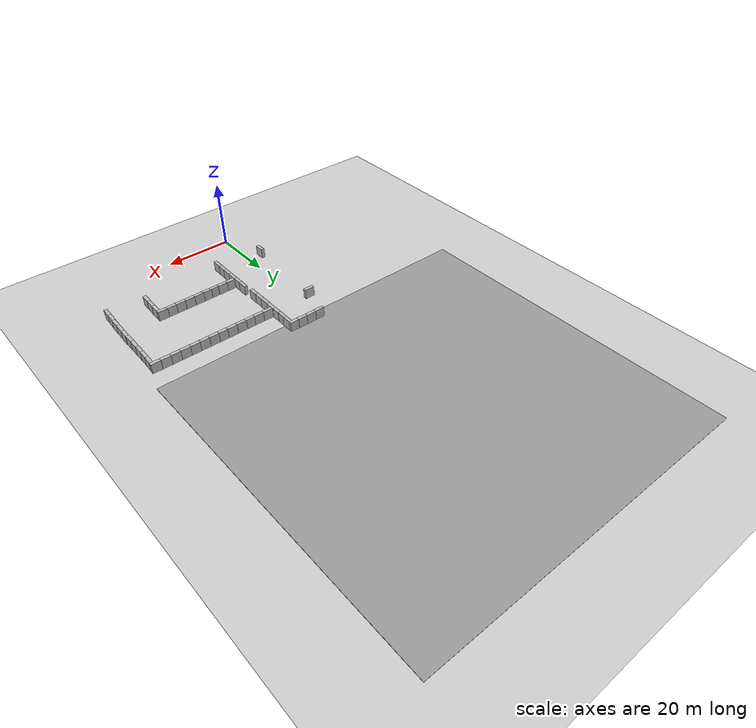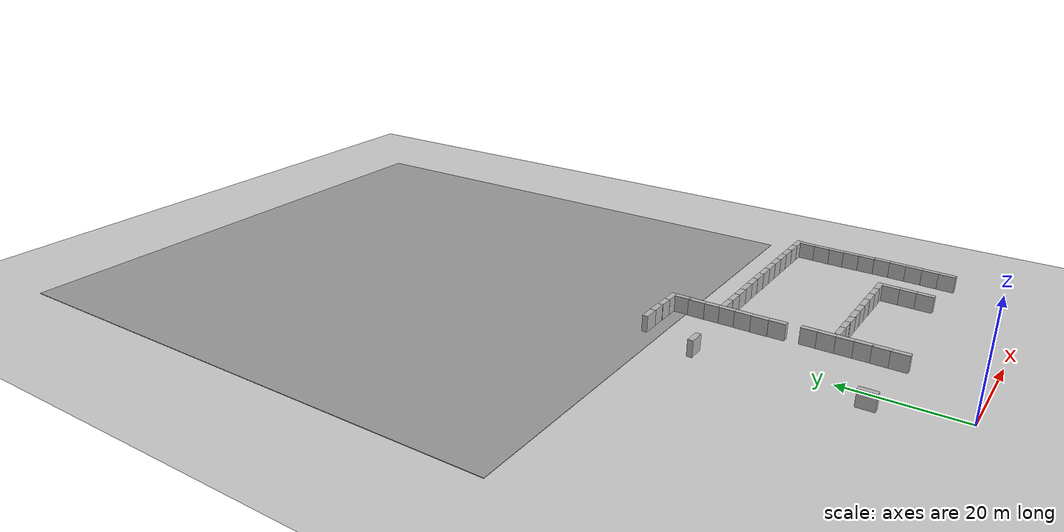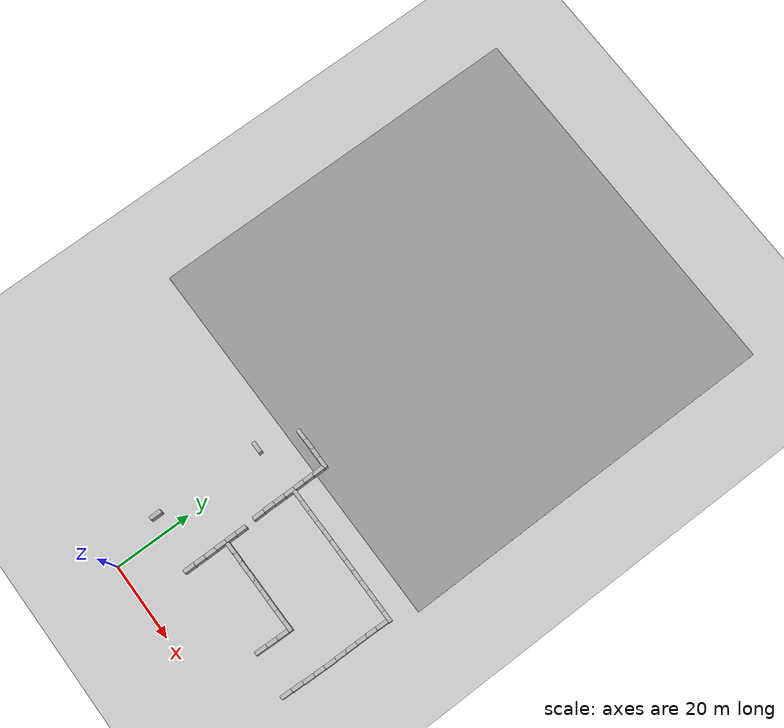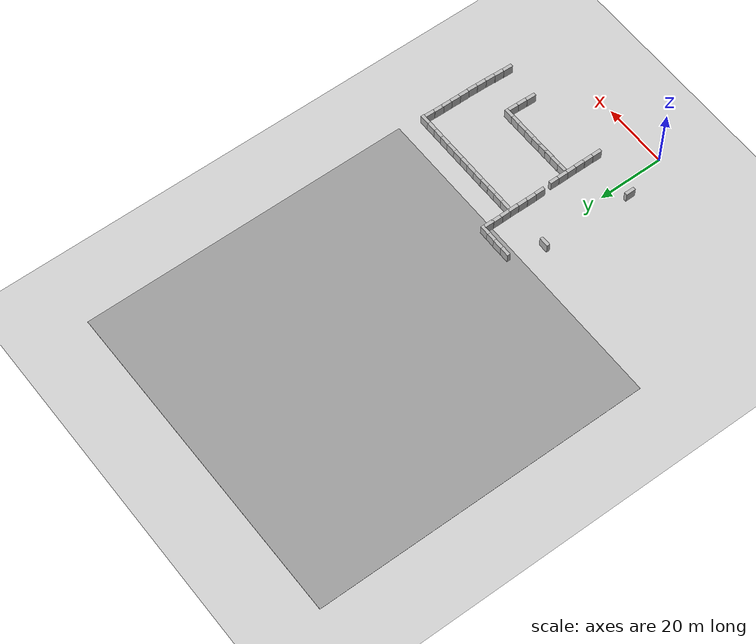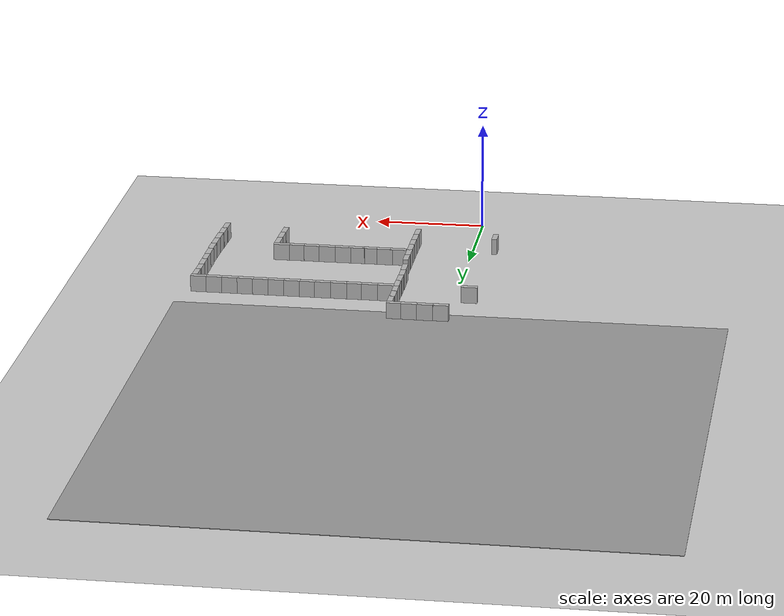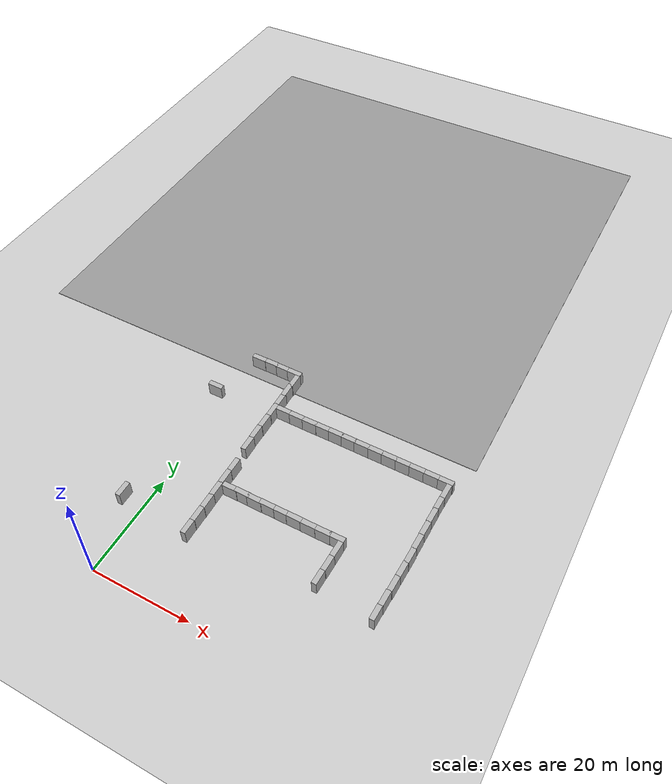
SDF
<sdf version="1.6">
 <world name="default">
  <model name="ground_plane">
   <static>1</static>
   <link name="link">
    <collision name="collision">
     <geometry><plane><normal>0 0 1</normal><size>100 100</size></plane></geometry>
     <surface>
      <contact><collide_bitmask>65535</collide_bitmask></contact>
      <friction><ode><mu>100</mu><mu2>50</mu2></ode></friction>
     </surface>
    </collision>
    <visual name="visual">
     <cast_shadows>0</cast_shadows>
     <geometry><plane><normal>0 0 1</normal><size>100 100</size></plane></geometry>
     <material>
      <script><uri>file://media/materials/scripts/gazebo.material</uri><name>Gazebo/Grey</name></script>
     </material>
    </visual>
   </link>
  </model>
  <model name="brick_box_3x1x3_1_clone_4">
   <static>1</static>
   <link name="chassis">
    <pose>0 0 1.5 0 -0 0</pose>
    <collision name="collision"><geometry><box><size>3 1 3</size></box></geometry></collision>
    <visual name="visual">
     <geometry><mesh><uri>model://brick_box_3x1x3/meshes/simple_box.dae</uri><scale>3 1 3</scale></mesh></geometry>
     <material>
      <script>
       <uri>model://brick_box_3x1x3/materials/scripts</uri>
       <uri>model://brick_box_3x1x3/materials/textures</uri>
       <name>BrickBox/Diffuse</name>
      </script>
     </material>
    </visual>
   </link>
   <pose>10.5723 13.2889 0 0 0 -1.56611</pose>
  </model>
  <model name="brick_box_3x1x3_1_clone_5">
   <static>1</static>
   <link name="chassis">
    <pose>0 0 1.5 0 -0 0</pose>
    <collision name="collision"><geometry><box><size>3 1 3</size></box></geometry></collision>
    <visual name="visual">
     <geometry><mesh><uri>model://brick_box_3x1x3/meshes/simple_box.dae</uri><scale>3 1 3</scale></mesh></geometry>
     <material>
      <script>
       <uri>model://brick_box_3x1x3/materials/scripts</uri>
       <uri>model://brick_box_3x1x3/materials/textures</uri>
       <name>BrickBox/Diffuse</name>
      </script>
     </material>
    </visual>
   </link>
   <pose>10.5988 16.1525 0 0 0 -1.56611</pose>
  </model>
  <model name="brick_box_3x1x3_1_clone_6">
   <static>1</static>
   <link name="chassis">
    <pose>0 0 1.5 0 -0 0</pose>
    <collision name="collision"><geometry><box><size>3 1 3</size></box></geometry></collision>
    <visual name="visual">
     <geometry><mesh><uri>model://brick_box_3x1x3/meshes/simple_box.dae</uri><scale>3 1 3</scale></mesh></geometry>
     <material>
      <script>
       <uri>model://brick_box_3x1x3/materials/scripts</uri>
       <uri>model://brick_box_3x1x3/materials/textures</uri>
       <name>BrickBox/Diffuse</name>
      </script>
     </material>
    </visual>
   </link>
   <pose>10.6319 19.0549 0 0 0 -1.56611</pose>
  </model>
  <model name="brick_box_3x1x3_1_clone_7">
   <static>1</static>
   <link name="chassis">
    <pose>0 0 1.5 0 -0 0</pose>
    <collision name="collision"><geometry><box><size>3 1 3</size></box></geometry></collision>
    <visual name="visual">
     <geometry><mesh><uri>model://brick_box_3x1x3/meshes/simple_box.dae</uri><scale>3 1 3</scale></mesh></geometry>
     <material>
      <script>
       <uri>model://brick_box_3x1x3/materials/scripts</uri>
       <uri>model://brick_box_3x1x3/materials/textures</uri>
       <name>BrickBox/Diffuse</name>
      </script>
     </material>
    </visual>
   </link>
   <pose>10.6106 21.95 0 0 0 -1.56611</pose>
  </model>
  <model name="brick_box_3x1x3_1_clone_8">
   <static>1</static>
   <link name="chassis">
    <pose>0 0 1.5 0 -0 0</pose>
    <collision name="collision"><geometry><box><size>3 1 3</size></box></geometry></collision>
    <visual name="visual">
     <geometry><mesh><uri>model://brick_box_3x1x3/meshes/simple_box.dae</uri><scale>3 1 3</scale></mesh></geometry>
     <material>
      <script>
       <uri>model://brick_box_3x1x3/materials/scripts</uri>
       <uri>model://brick_box_3x1x3/materials/textures</uri>
       <name>BrickBox/Diffuse</name>
      </script>
     </material>
    </visual>
   </link>
   <pose>10.5896 24.8323 0 0 0 -1.56611</pose>
  </model>
  <model name="brick_box_3x1x3_1_clone_9">
   <static>1</static>
   <link name="chassis">
    <pose>0 0 1.5 0 -0 0</pose>
    <collision name="collision"><geometry><box><size>3 1 3</size></box></geometry></collision>
    <visual name="visual">
     <geometry><mesh><uri>model://brick_box_3x1x3/meshes/simple_box.dae</uri><scale>3 1 3</scale></mesh></geometry>
     <material>
      <script>
       <uri>model://brick_box_3x1x3/materials/scripts</uri>
       <uri>model://brick_box_3x1x3/materials/textures</uri>
       <name>BrickBox/Diffuse</name>
      </script>
     </material>
    </visual>
   </link>
   <pose>10.6094 27.593 0 0 0 -1.56611</pose>
  </model>
  <model name="brick_box_3x1x3_2_clone_clone_0">
   <static>1</static>
   <link name="chassis">
    <pose>0 0 1.5 0 -0 0</pose>
    <collision name="collision"><geometry><box><size>3 1 3</size></box></geometry></collision>
    <visual name="visual">
     <geometry><mesh><uri>model://brick_box_3x1x3/meshes/simple_box.dae</uri><scale>3 1 3</scale></mesh></geometry>
     <material>
      <script>
       <uri>model://brick_box_3x1x3/materials/scripts</uri>
       <uri>model://brick_box_3x1x3/materials/textures</uri>
       <name>BrickBox/Diffuse</name>
      </script>
     </material>
    </visual>
   </link>
   <pose>12.7018 23.419 0 0 -0 0</pose>
  </model>
  <model name="brick_box_3x1x3_2_clone_clone_1">
   <static>1</static>
   <link name="chassis">
    <pose>0 0 1.5 0 -0 0</pose>
    <collision name="collision"><geometry><box><size>3 1 3</size></box></geometry></collision>
    <visual name="visual">
     <geometry><mesh><uri>model://brick_box_3x1x3/meshes/simple_box.dae</uri><scale>3 1 3</scale></mesh></geometry>
     <material>
      <script>
       <uri>model://brick_box_3x1x3/materials/scripts</uri>
       <uri>model://brick_box_3x1x3/materials/textures</uri>
       <name>BrickBox/Diffuse</name>
      </script>
     </material>
    </visual>
   </link>
   <pose>15.2225 23.4641 0 0 -0 0</pose>
  </model>
  <model name="brick_box_3x1x3_2_clone_clone_2">
   <static>1</static>
   <link name="chassis">
    <pose>0 0 1.5 0 -0 0</pose>
    <collision name="collision"><geometry><box><size>3 1 3</size></box></geometry></collision>
    <visual name="visual">
     <geometry><mesh><uri>model://brick_box_3x1x3/meshes/simple_box.dae</uri><scale>3 1 3</scale></mesh></geometry>
     <material>
      <script>
       <uri>model://brick_box_3x1x3/materials/scripts</uri>
       <uri>model://brick_box_3x1x3/materials/textures</uri>
       <name>BrickBox/Diffuse</name>
      </script>
     </material>
    </visual>
   </link>
   <pose>17.8816 23.4199 0 0 -0 0</pose>
  </model>
  <model name="brick_box_3x1x3_2_clone_clone_3">
   <static>1</static>
   <link name="chassis">
    <pose>0 0 1.5 0 -0 0</pose>
    <collision name="collision"><geometry><box><size>3 1 3</size></box></geometry></collision>
    <visual name="visual">
     <geometry><mesh><uri>model://brick_box_3x1x3/meshes/simple_box.dae</uri><scale>3 1 3</scale></mesh></geometry>
     <material>
      <script>
       <uri>model://brick_box_3x1x3/materials/scripts</uri>
       <uri>model://brick_box_3x1x3/materials/textures</uri>
       <name>BrickBox/Diffuse</name>
      </script>
     </material>
    </visual>
   </link>
   <pose>20.5136 23.4661 0 0 -0 0</pose>
  </model>
  <model name="brick_box_3x1x3_2_clone_clone_4">
   <static>1</static>
   <link name="chassis">
    <pose>0 0 1.5 0 -0 0</pose>
    <collision name="collision"><geometry><box><size>3 1 3</size></box></geometry></collision>
    <visual name="visual">
     <geometry><mesh><uri>model://brick_box_3x1x3/meshes/simple_box.dae</uri><scale>3 1 3</scale></mesh></geometry>
     <material>
      <script>
       <uri>model://brick_box_3x1x3/materials/scripts</uri>
       <uri>model://brick_box_3x1x3/materials/textures</uri>
       <name>BrickBox/Diffuse</name>
      </script>
     </material>
    </visual>
   </link>
   <pose>23.0714 23.4688 0 0 -0 0</pose>
  </model>
  <model name="brick_box_3x1x3_2_clone_clone_5">
   <static>1</static>
   <link name="chassis">
    <pose>0 0 1.5 0 -0 0</pose>
    <collision name="collision"><geometry><box><size>3 1 3</size></box></geometry></collision>
    <visual name="visual">
     <geometry><mesh><uri>model://brick_box_3x1x3/meshes/simple_box.dae</uri><scale>3 1 3</scale></mesh></geometry>
     <material>
      <script>
       <uri>model://brick_box_3x1x3/materials/scripts</uri>
       <uri>model://brick_box_3x1x3/materials/textures</uri>
       <name>BrickBox/Diffuse</name>
      </script>
     </material>
    </visual>
   </link>
   <pose>26.0277 23.485 0 0 -0 0</pose>
  </model>
  <model name="brick_box_3x1x3_2_clone_clone_22">
   <static>1</static>
   <link name="chassis">
    <pose>0 0 1.5 0 -0 0</pose>
    <collision name="collision"><geometry><box><size>3 1 3</size></box></geometry></collision>
    <visual name="visual">
     <geometry><mesh><uri>model://brick_box_3x1x3/meshes/simple_box.dae</uri><scale>3 1 3</scale></mesh></geometry>
     <material>
      <script>
       <uri>model://brick_box_3x1x3/materials/scripts</uri>
       <uri>model://brick_box_3x1x3/materials/textures</uri>
       <name>BrickBox/Diffuse</name>
      </script>
     </material>
    </visual>
   </link>
   <pose>28.8854 23.4647 0 0 -0 0</pose>
  </model>
  <model name="brick_box_3x1x3_2_clone_clone_23">
   <static>1</static>
   <link name="chassis">
    <pose>0 0 1.5 0 -0 0</pose>
    <collision name="collision"><geometry><box><size>3 1 3</size></box></geometry></collision>
    <visual name="visual">
     <geometry><mesh><uri>model://brick_box_3x1x3/meshes/simple_box.dae</uri><scale>3 1 3</scale></mesh></geometry>
     <material>
      <script>
       <uri>model://brick_box_3x1x3/materials/scripts</uri>
       <uri>model://brick_box_3x1x3/materials/textures</uri>
       <name>BrickBox/Diffuse</name>
      </script>
     </material>
    </visual>
   </link>
   <pose>31.8378 23.4712 0 0 -0 0</pose>
  </model>
  <model name="brick_box_3x1x3_2_clone_clone_24">
   <static>1</static>
   <link name="chassis">
    <pose>0 0 1.5 0 -0 0</pose>
    <collision name="collision"><geometry><box><size>3 1 3</size></box></geometry></collision>
    <visual name="visual">
     <geometry><mesh><uri>model://brick_box_3x1x3/meshes/simple_box.dae</uri><scale>3 1 3</scale></mesh></geometry>
     <material>
      <script>
       <uri>model://brick_box_3x1x3/materials/scripts</uri>
       <uri>model://brick_box_3x1x3/materials/textures</uri>
       <name>BrickBox/Diffuse</name>
      </script>
     </material>
    </visual>
   </link>
   <pose>34.5713 23.5159 0 0 -0 0</pose>
  </model>
  <model name="brick_box_3x1x3_1">
   <static>1</static>
   <link name="chassis">
    <pose>0 0 1.5 0 -0 0</pose>
    <collision name="collision"><geometry><box><size>3 1 3</size></box></geometry></collision>
    <visual name="visual">
     <geometry><mesh><uri>model://brick_box_3x1x3/meshes/simple_box.dae</uri><scale>3 1 3</scale></mesh></geometry>
     <material>
      <script>
       <uri>model://brick_box_3x1x3/materials/scripts</uri>
       <uri>model://brick_box_3x1x3/materials/textures</uri>
       <name>BrickBox/Diffuse</name>
      </script>
     </material>
    </visual>
   </link>
   <pose>35.542 21.5109 0 0 0 -1.59732</pose>
  </model>
  <model name="brick_box_3x1x3_1_clone_10">
   <static>1</static>
   <link name="chassis">
    <pose>0 0 1.5 0 -0 0</pose>
    <collision name="collision"><geometry><box><size>3 1 3</size></box></geometry></collision>
    <visual name="visual">
     <geometry><mesh><uri>model://brick_box_3x1x3/meshes/simple_box.dae</uri><scale>3 1 3</scale></mesh></geometry>
     <material>
      <script>
       <uri>model://brick_box_3x1x3/materials/scripts</uri>
       <uri>model://brick_box_3x1x3/materials/textures</uri>
       <name>BrickBox/Diffuse</name>
      </script>
     </material>
    </visual>
   </link>
   <pose>35.4702 18.5428 0 0 0 -1.59732</pose>
  </model>
  <model name="brick_box_3x1x3_1_clone_11">
   <static>1</static>
   <link name="chassis">
    <pose>0 0 1.5 0 -0 0</pose>
    <collision name="collision"><geometry><box><size>3 1 3</size></box></geometry></collision>
    <visual name="visual">
     <geometry><mesh><uri>model://brick_box_3x1x3/meshes/simple_box.dae</uri><scale>3 1 3</scale></mesh></geometry>
     <material>
      <script>
       <uri>model://brick_box_3x1x3/materials/scripts</uri>
       <uri>model://brick_box_3x1x3/materials/textures</uri>
       <name>BrickBox/Diffuse</name>
      </script>
     </material>
    </visual>
   </link>
   <pose>35.3544 15.6428 0 0 0 -1.59732</pose>
  </model>
  <model name="brick_box_3x1x3_1_clone_11_clone_6">
   <static>1</static>
   <link name="chassis">
    <pose>0 0 1.5 0 -0 0</pose>
    <collision name="collision"><geometry><box><size>3 1 3</size></box></geometry></collision>
    <visual name="visual">
     <geometry><mesh><uri>model://brick_box_3x1x3/meshes/simple_box.dae</uri><scale>3 1 3</scale></mesh></geometry>
     <material>
      <script>
       <uri>model://brick_box_3x1x3/materials/scripts</uri>
       <uri>model://brick_box_3x1x3/materials/textures</uri>
       <name>BrickBox/Diffuse</name>
      </script>
     </material>
    </visual>
   </link>
   <pose>46.6808 14.5942 0 0 0 -1.59732</pose>
  </model>
  <model name="brick_box_3x1x3_1_clone_11_clone_7">
   <static>1</static>
   <link name="chassis">
    <pose>0 0 1.5 0 -0 0</pose>
    <collision name="collision"><geometry><box><size>3 1 3</size></box></geometry></collision>
    <visual name="visual">
     <geometry><mesh><uri>model://brick_box_3x1x3/meshes/simple_box.dae</uri><scale>3 1 3</scale></mesh></geometry>
     <material>
      <script>
       <uri>model://brick_box_3x1x3/materials/scripts</uri>
       <uri>model://brick_box_3x1x3/materials/textures</uri>
       <name>BrickBox/Diffuse</name>
      </script>
     </material>
    </visual>
   </link>
   <pose>46.8142 17.5071 0 0 0 -1.59732</pose>
  </model>
  <model name="brick_box_3x1x3_1_clone_11_clone_8">
   <static>1</static>
   <link name="chassis">
    <pose>0 0 1.5 0 -0 0</pose>
    <collision name="collision"><geometry><box><size>3 1 3</size></box></geometry></collision>
    <visual name="visual">
     <geometry><mesh><uri>model://brick_box_3x1x3/meshes/simple_box.dae</uri><scale>3 1 3</scale></mesh></geometry>
     <material>
      <script>
       <uri>model://brick_box_3x1x3/materials/scripts</uri>
       <uri>model://brick_box_3x1x3/materials/textures</uri>
       <name>BrickBox/Diffuse</name>
      </script>
     </material>
    </visual>
   </link>
   <pose>46.98 20.4468 0 0 0 -1.59732</pose>
  </model>
  <model name="brick_box_3x1x3_1_clone_11_clone_9">
   <static>1</static>
   <link name="chassis">
    <pose>0 0 1.5 0 -0 0</pose>
    <collision name="collision"><geometry><box><size>3 1 3</size></box></geometry></collision>
    <visual name="visual">
     <geometry><mesh><uri>model://brick_box_3x1x3/meshes/simple_box.dae</uri><scale>3 1 3</scale></mesh></geometry>
     <material>
      <script>
       <uri>model://brick_box_3x1x3/materials/scripts</uri>
       <uri>model://brick_box_3x1x3/materials/textures</uri>
       <name>BrickBox/Diffuse</name>
      </script>
     </material>
    </visual>
   </link>
   <pose>47.0706 23.3987 0 0 0 -1.59732</pose>
  </model>
  <model name="brick_box_3x1x3_1_clone_11_clone_10">
   <static>1</static>
   <link name="chassis">
    <pose>0 0 1.5 0 -0 0</pose>
    <collision name="collision"><geometry><box><size>3 1 3</size></box></geometry></collision>
    <visual name="visual">
     <geometry><mesh><uri>model://brick_box_3x1x3/meshes/simple_box.dae</uri><scale>3 1 3</scale></mesh></geometry>
     <material>
      <script>
       <uri>model://brick_box_3x1x3/materials/scripts</uri>
       <uri>model://brick_box_3x1x3/materials/textures</uri>
       <name>BrickBox/Diffuse</name>
      </script>
     </material>
    </visual>
   </link>
   <pose>47.1753 26.3002 0 0 0 -1.59732</pose>
  </model>
  <model name="brick_box_3x1x3_1_clone_11_clone_11">
   <static>1</static>
   <link name="chassis">
    <pose>0 0 1.5 0 -0 0</pose>
    <collision name="collision"><geometry><box><size>3 1 3</size></box></geometry></collision>
    <visual name="visual">
     <geometry><mesh><uri>model://brick_box_3x1x3/meshes/simple_box.dae</uri><scale>3 1 3</scale></mesh></geometry>
     <material>
      <script>
       <uri>model://brick_box_3x1x3/materials/scripts</uri>
       <uri>model://brick_box_3x1x3/materials/textures</uri>
       <name>BrickBox/Diffuse</name>
      </script>
     </material>
    </visual>
   </link>
   <pose>47.1701 29.2609 0 0 0 -1.59732</pose>
  </model>
  <model name="brick_box_3x1x3_1_clone_11_clone_12">
   <static>1</static>
   <link name="chassis">
    <pose>0 0 1.5 0 -0 0</pose>
    <collision name="collision"><geometry><box><size>3 1 3</size></box></geometry></collision>
    <visual name="visual">
     <geometry><mesh><uri>model://brick_box_3x1x3/meshes/simple_box.dae</uri><scale>3 1 3</scale></mesh></geometry>
     <material>
      <script>
       <uri>model://brick_box_3x1x3/materials/scripts</uri>
       <uri>model://brick_box_3x1x3/materials/textures</uri>
       <name>BrickBox/Diffuse</name>
      </script>
     </material>
    </visual>
   </link>
   <pose>47.1921 32.1709 0 0 0 -1.59732</pose>
  </model>
  <model name="brick_box_3x1x3_1_clone_11_clone_13">
   <static>1</static>
   <link name="chassis">
    <pose>0 0 1.5 0 -0 0</pose>
    <collision name="collision"><geometry><box><size>3 1 3</size></box></geometry></collision>
    <visual name="visual">
     <geometry><mesh><uri>model://brick_box_3x1x3/meshes/simple_box.dae</uri><scale>3 1 3</scale></mesh></geometry>
     <material>
      <script>
       <uri>model://brick_box_3x1x3/materials/scripts</uri>
       <uri>model://brick_box_3x1x3/materials/textures</uri>
       <name>BrickBox/Diffuse</name>
      </script>
     </material>
    </visual>
   </link>
   <pose>47.2165 35.0824 0 0 0 -1.59732</pose>
  </model>
  <model name="brick_box_3x1x3_1_clone_11_clone_14">
   <static>1</static>
   <link name="chassis">
    <pose>0 0 1.5 0 -0 0</pose>
    <collision name="collision"><geometry><box><size>3 1 3</size></box></geometry></collision>
    <visual name="visual">
     <geometry><mesh><uri>model://brick_box_3x1x3/meshes/simple_box.dae</uri><scale>3 1 3</scale></mesh></geometry>
     <material>
      <script>
       <uri>model://brick_box_3x1x3/materials/scripts</uri>
       <uri>model://brick_box_3x1x3/materials/textures</uri>
       <name>BrickBox/Diffuse</name>
      </script>
     </material>
    </visual>
   </link>
   <pose>47.2433 37.7774 0 0 0 -1.59732</pose>
  </model>
  <model name="brick_box_3x1x3_1_clone_11_clone_15">
   <static>1</static>
   <link name="chassis">
    <pose>0 0 1.5 0 -0 0</pose>
    <collision name="collision"><geometry><box><size>3 1 3</size></box></geometry></collision>
    <visual name="visual">
     <geometry><mesh><uri>model://brick_box_3x1x3/meshes/simple_box.dae</uri><scale>3 1 3</scale></mesh></geometry>
     <material>
      <script>
       <uri>model://brick_box_3x1x3/materials/scripts</uri>
       <uri>model://brick_box_3x1x3/materials/textures</uri>
       <name>BrickBox/Diffuse</name>
      </script>
     </material>
    </visual>
   </link>
   <pose>47.3431 40.6241 0 0 0 -1.59732</pose>
  </model>
  <model name="brick_box_3x1x3_2_clone_clone_13_clone">
   <static>1</static>
   <link name="chassis">
    <pose>0 0 1.5 0 -0 0</pose>
    <collision name="collision"><geometry><box><size>3 1 3</size></box></geometry></collision>
    <visual name="visual">
     <geometry><mesh><uri>model://brick_box_3x1x3/meshes/simple_box.dae</uri><scale>3 1 3</scale></mesh></geometry>
     <material>
      <script>
       <uri>model://brick_box_3x1x3/materials/scripts</uri>
       <uri>model://brick_box_3x1x3/materials/textures</uri>
       <name>BrickBox/Diffuse</name>
      </script>
     </material>
    </visual>
   </link>
   <pose>46.5049 42.607 0 0 -0 0</pose>
  </model>
  <model name="brick_box_3x1x3_2_clone_clone_13_clone_0">
   <static>1</static>
   <link name="chassis">
    <pose>0 0 1.5 0 -0 0</pose>
    <collision name="collision"><geometry><box><size>3 1 3</size></box></geometry></collision>
    <visual name="visual">
     <geometry><mesh><uri>model://brick_box_3x1x3/meshes/simple_box.dae</uri><scale>3 1 3</scale></mesh></geometry>
     <material>
      <script>
       <uri>model://brick_box_3x1x3/materials/scripts</uri>
       <uri>model://brick_box_3x1x3/materials/textures</uri>
       <name>BrickBox/Diffuse</name>
      </script>
     </material>
    </visual>
   </link>
   <pose>43.6402 42.6237 0 0 -0 0</pose>
  </model>
  <model name="brick_box_3x1x3_2_clone_clone_13_clone_1">
   <static>1</static>
   <link name="chassis">
    <pose>0 0 1.5 0 -0 0</pose>
    <collision name="collision"><geometry><box><size>3 1 3</size></box></geometry></collision>
    <visual name="visual">
     <geometry><mesh><uri>model://brick_box_3x1x3/meshes/simple_box.dae</uri><scale>3 1 3</scale></mesh></geometry>
     <material>
      <script>
       <uri>model://brick_box_3x1x3/materials/scripts</uri>
       <uri>model://brick_box_3x1x3/materials/textures</uri>
       <name>BrickBox/Diffuse</name>
      </script>
     </material>
    </visual>
   </link>
   <pose>40.7493 42.6347 0 0 -0 0</pose>
  </model>
  <model name="brick_box_3x1x3_2_clone_clone_13_clone_2">
   <static>1</static>
   <link name="chassis">
    <pose>0 0 1.5 0 -0 0</pose>
    <collision name="collision"><geometry><box><size>3 1 3</size></box></geometry></collision>
    <visual name="visual">
     <geometry><mesh><uri>model://brick_box_3x1x3/meshes/simple_box.dae</uri><scale>3 1 3</scale></mesh></geometry>
     <material>
      <script>
       <uri>model://brick_box_3x1x3/materials/scripts</uri>
       <uri>model://brick_box_3x1x3/materials/textures</uri>
       <name>BrickBox/Diffuse</name>
      </script>
     </material>
    </visual>
   </link>
   <pose>37.919 42.6456 0 0 -0 0</pose>
  </model>
  <model name="brick_box_3x1x3_2_clone_clone_13_clone_3">
   <static>1</static>
   <link name="chassis">
    <pose>0 0 1.5 0 -0 0</pose>
    <collision name="collision"><geometry><box><size>3 1 3</size></box></geometry></collision>
    <visual name="visual">
     <geometry><mesh><uri>model://brick_box_3x1x3/meshes/simple_box.dae</uri><scale>3 1 3</scale></mesh></geometry>
     <material>
      <script>
       <uri>model://brick_box_3x1x3/materials/scripts</uri>
       <uri>model://brick_box_3x1x3/materials/textures</uri>
       <name>BrickBox/Diffuse</name>
      </script>
     </material>
    </visual>
   </link>
   <pose>35.0637 42.6561 0 0 -0 0</pose>
  </model>
  <model name="brick_box_3x1x3_2_clone_clone_13_clone_4">
   <static>1</static>
   <link name="chassis">
    <pose>0 0 1.5 0 -0 0</pose>
    <collision name="collision"><geometry><box><size>3 1 3</size></box></geometry></collision>
    <visual name="visual">
     <geometry><mesh><uri>model://brick_box_3x1x3/meshes/simple_box.dae</uri><scale>3 1 3</scale></mesh></geometry>
     <material>
      <script>
       <uri>model://brick_box_3x1x3/materials/scripts</uri>
       <uri>model://brick_box_3x1x3/materials/textures</uri>
       <name>BrickBox/Diffuse</name>
      </script>
     </material>
    </visual>
   </link>
   <pose>32.1978 42.6626 0 0 -0 0</pose>
  </model>
  <model name="brick_box_3x1x3_2_clone_clone_13_clone_5">
   <static>1</static>
   <link name="chassis">
    <pose>0 0 1.5 0 -0 0</pose>
    <collision name="collision"><geometry><box><size>3 1 3</size></box></geometry></collision>
    <visual name="visual">
     <geometry><mesh><uri>model://brick_box_3x1x3/meshes/simple_box.dae</uri><scale>3 1 3</scale></mesh></geometry>
     <material>
      <script>
       <uri>model://brick_box_3x1x3/materials/scripts</uri>
       <uri>model://brick_box_3x1x3/materials/textures</uri>
       <name>BrickBox/Diffuse</name>
      </script>
     </material>
    </visual>
   </link>
   <pose>29.3164 42.6643 0 0 -0 0</pose>
  </model>
  <model name="brick_box_3x1x3_2_clone_clone_13_clone_6">
   <static>1</static>
   <link name="chassis">
    <pose>0 0 1.5 0 -0 0</pose>
    <collision name="collision"><geometry><box><size>3 1 3</size></box></geometry></collision>
    <visual name="visual">
     <geometry><mesh><uri>model://brick_box_3x1x3/meshes/simple_box.dae</uri><scale>3 1 3</scale></mesh></geometry>
     <material>
      <script>
       <uri>model://brick_box_3x1x3/materials/scripts</uri>
       <uri>model://brick_box_3x1x3/materials/textures</uri>
       <name>BrickBox/Diffuse</name>
      </script>
     </material>
    </visual>
   </link>
   <pose>26.4978 42.6777 0 0 -0 0</pose>
  </model>
  <model name="brick_box_3x1x3_2_clone_clone_13_clone_7">
   <static>1</static>
   <link name="chassis">
    <pose>0 0 1.5 0 -0 0</pose>
    <collision name="collision"><geometry><box><size>3 1 3</size></box></geometry></collision>
    <visual name="visual">
     <geometry><mesh><uri>model://brick_box_3x1x3/meshes/simple_box.dae</uri><scale>3 1 3</scale></mesh></geometry>
     <material>
      <script>
       <uri>model://brick_box_3x1x3/materials/scripts</uri>
       <uri>model://brick_box_3x1x3/materials/textures</uri>
       <name>BrickBox/Diffuse</name>
      </script>
     </material>
    </visual>
   </link>
   <pose>23.7172 42.6935 0 0 -0 0</pose>
  </model>
  <model name="brick_box_3x1x3_2_clone_clone_13_clone_8">
   <static>1</static>
   <link name="chassis">
    <pose>0 0 1.5 0 -0 0</pose>
    <collision name="collision"><geometry><box><size>3 1 3</size></box></geometry></collision>
    <visual name="visual">
     <geometry><mesh><uri>model://brick_box_3x1x3/meshes/simple_box.dae</uri><scale>3 1 3</scale></mesh></geometry>
     <material>
      <script>
       <uri>model://brick_box_3x1x3/materials/scripts</uri>
       <uri>model://brick_box_3x1x3/materials/textures</uri>
       <name>BrickBox/Diffuse</name>
      </script>
     </material>
    </visual>
   </link>
   <pose>20.7807 42.6716 0 0 -0 0</pose>
  </model>
  <model name="brick_box_3x1x3_2_clone_clone_13_clone_9">
   <static>1</static>
   <link name="chassis">
    <pose>0 0 1.5 0 -0 0</pose>
    <collision name="collision"><geometry><box><size>3 1 3</size></box></geometry></collision>
    <visual name="visual">
     <geometry><mesh><uri>model://brick_box_3x1x3/meshes/simple_box.dae</uri><scale>3 1 3</scale></mesh></geometry>
     <material>
      <script>
       <uri>model://brick_box_3x1x3/materials/scripts</uri>
       <uri>model://brick_box_3x1x3/materials/textures</uri>
       <name>BrickBox/Diffuse</name>
      </script>
     </material>
    </visual>
   </link>
   <pose>18.0319 42.6522 0 0 -0 0</pose>
  </model>
  <model name="brick_box_3x1x3_2_clone_clone_13_clone_10">
   <static>1</static>
   <link name="chassis">
    <pose>0 0 1.5 0 -0 0</pose>
    <collision name="collision"><geometry><box><size>3 1 3</size></box></geometry></collision>
    <visual name="visual">
     <geometry><mesh><uri>model://brick_box_3x1x3/meshes/simple_box.dae</uri><scale>3 1 3</scale></mesh></geometry>
     <material>
      <script>
       <uri>model://brick_box_3x1x3/materials/scripts</uri>
       <uri>model://brick_box_3x1x3/materials/textures</uri>
       <name>BrickBox/Diffuse</name>
      </script>
     </material>
    </visual>
   </link>
   <pose>15.142 42.6627 0 0 -0 0</pose>
  </model>
  <model name="brick_box_3x1x3_2_clone_clone_13_clone_11">
   <static>1</static>
   <link name="chassis">
    <pose>0 0 1.5 0 -0 0</pose>
    <collision name="collision"><geometry><box><size>3 1 3</size></box></geometry></collision>
    <visual name="visual">
     <geometry><mesh><uri>model://brick_box_3x1x3/meshes/simple_box.dae</uri><scale>3 1 3</scale></mesh></geometry>
     <material>
      <script>
       <uri>model://brick_box_3x1x3/materials/scripts</uri>
       <uri>model://brick_box_3x1x3/materials/textures</uri>
       <name>BrickBox/Diffuse</name>
      </script>
     </material>
    </visual>
   </link>
   <pose>12.2053 42.6822 0 0 -0 0</pose>
  </model>
  <model name="brick_box_3x1x3_1_clone_9_clone">
   <static>1</static>
   <link name="chassis">
    <pose>0 0 1.5 0 -0 0</pose>
    <collision name="collision"><geometry><box><size>3 1 3</size></box></geometry></collision>
    <visual name="visual">
     <geometry><mesh><uri>model://brick_box_3x1x3/meshes/simple_box.dae</uri><scale>3 1 3</scale></mesh></geometry>
     <material>
      <script>
       <uri>model://brick_box_3x1x3/materials/scripts</uri>
       <uri>model://brick_box_3x1x3/materials/textures</uri>
       <name>BrickBox/Diffuse</name>
      </script>
     </material>
    </visual>
   </link>
   <pose>10.2383 41.749 0 0 0 -1.56611</pose>
  </model>
  <model name="brick_box_3x1x3_1_clone_9_clone_0">
   <static>1</static>
   <link name="chassis">
    <pose>0 0 1.5 0 -0 0</pose>
    <collision name="collision"><geometry><box><size>3 1 3</size></box></geometry></collision>
    <visual name="visual">
     <geometry><mesh><uri>model://brick_box_3x1x3/meshes/simple_box.dae</uri><scale>3 1 3</scale></mesh></geometry>
     <material>
      <script>
       <uri>model://brick_box_3x1x3/materials/scripts</uri>
       <uri>model://brick_box_3x1x3/materials/textures</uri>
       <name>BrickBox/Diffuse</name>
      </script>
     </material>
    </visual>
   </link>
   <pose>10.2023 38.7516 0 0 0 -1.56611</pose>
  </model>
  <model name="brick_box_3x1x3_1_clone_9_clone_1">
   <static>1</static>
   <link name="chassis">
    <pose>0 0 1.5 0 -0 0</pose>
    <collision name="collision"><geometry><box><size>3 1 3</size></box></geometry></collision>
    <visual name="visual">
     <geometry><mesh><uri>model://brick_box_3x1x3/meshes/simple_box.dae</uri><scale>3 1 3</scale></mesh></geometry>
     <material>
      <script>
       <uri>model://brick_box_3x1x3/materials/scripts</uri>
       <uri>model://brick_box_3x1x3/materials/textures</uri>
       <name>BrickBox/Diffuse</name>
      </script>
     </material>
    </visual>
   </link>
   <pose>10.1649 35.8356 0 0 0 -1.56611</pose>
  </model>
  <model name="brick_box_3x1x3_1_clone_9_clone_2">
   <static>1</static>
   <link name="chassis">
    <pose>0 0 1.5 0 -0 0</pose>
    <collision name="collision"><geometry><box><size>3 1 3</size></box></geometry></collision>
    <visual name="visual">
     <geometry><mesh><uri>model://brick_box_3x1x3/meshes/simple_box.dae</uri><scale>3 1 3</scale></mesh></geometry>
     <material>
      <script>
       <uri>model://brick_box_3x1x3/materials/scripts</uri>
       <uri>model://brick_box_3x1x3/materials/textures</uri>
       <name>BrickBox/Diffuse</name>
      </script>
     </material>
    </visual>
   </link>
   <pose>10.2323 32.8461 0 0 0 -1.56611</pose>
  </model>
  <model name="brick_box_3x1x3_1_clone_9_clone_10">
   <static>1</static>
   <link name="chassis">
    <pose>0 0 1.5 0 -0 0</pose>
    <collision name="collision"><geometry><box><size>3 1 3</size></box></geometry></collision>
    <visual name="visual">
     <geometry><mesh><uri>model://brick_box_3x1x3/meshes/simple_box.dae</uri><scale>3 1 3</scale></mesh></geometry>
     <material>
      <script>
       <uri>model://brick_box_3x1x3/materials/scripts</uri>
       <uri>model://brick_box_3x1x3/materials/textures</uri>
       <name>BrickBox/Diffuse</name>
      </script>
     </material>
    </visual>
   </link>
   <pose>-4.15572 14.046 0 0 0 -1.56611</pose>
  </model>
  <model name="brick_box_3x1x3_2_clone_clone_13_clone_11_clone_2">
   <static>1</static>
   <link name="chassis">
    <pose>0 0 1.5 0 -0 0</pose>
    <collision name="collision"><geometry><box><size>3 1 3</size></box></geometry></collision>
    <visual name="visual">
     <geometry><mesh><uri>model://brick_box_3x1x3/meshes/simple_box.dae</uri><scale>3 1 3</scale></mesh></geometry>
     <material>
      <script>
       <uri>model://brick_box_3x1x3/materials/scripts</uri>
       <uri>model://brick_box_3x1x3/materials/textures</uri>
       <name>BrickBox/Diffuse</name>
      </script>
     </material>
    </visual>
   </link>
   <pose>-2.85578 41.731 0 0 -0 0</pose>
  </model>
  <model name="ground_plane_0">
   <static>1</static>
   <link name="link">
    <collision name="collision">
     <geometry><plane><normal>0 0 1</normal><size>100 100</size></plane></geometry>
     <surface>
      <contact><collide_bitmask>65535</collide_bitmask></contact>
      <friction><ode><mu>100</mu><mu2>50</mu2></ode></friction>
     </surface>
    </collision>
    <visual name="visual">
     <cast_shadows>0</cast_shadows>
     <geometry><plane><normal>0 0 1</normal><size>100 100</size></plane></geometry>
     <material>
      <script><uri>file://media/materials/scripts/gazebo.material</uri><name>Gazebo/Grey</name></script>
     </material>
    </visual>
   </link>
   <pose>-0.011997 98.9366 0 0 -0 0</pose>
  </model>
  <model name="brick_box_3x1x3_1_clone_9_clone_clone">
   <static>1</static>
   <link name="chassis">
    <pose>0 0 1.5 0 -0 0</pose>
    <collision name="collision"><geometry><box><size>3 1 3</size></box></geometry></collision>
    <visual name="visual">
     <geometry><mesh><uri>model://brick_box_3x1x3/meshes/simple_box.dae</uri><scale>3 1 3</scale></mesh></geometry>
     <material>
      <script>
       <uri>model://brick_box_3x1x3/materials/scripts</uri>
       <uri>model://brick_box_3x1x3/materials/textures</uri>
       <name>BrickBox/Diffuse</name>
      </script>
     </material>
    </visual>
   </link>
   <pose>10.2117 44.4786 0 0 0 -1.56611</pose>
  </model>
  <model name="brick_box_3x1x3_1_clone_9_clone_clone_0">
   <static>1</static>
   <link name="chassis">
    <pose>0 0 1.5 0 -0 0</pose>
    <collision name="collision"><geometry><box><size>3 1 3</size></box></geometry></collision>
    <visual name="visual">
     <geometry><mesh><uri>model://brick_box_3x1x3/meshes/simple_box.dae</uri><scale>3 1 3</scale></mesh></geometry>
     <material>
      <script>
       <uri>model://brick_box_3x1x3/materials/scripts</uri>
       <uri>model://brick_box_3x1x3/materials/textures</uri>
       <name>BrickBox/Diffuse</name>
      </script>
     </material>
    </visual>
   </link>
   <pose>10.179 47.1672 0 0 0 -1.56611</pose>
  </model>
  <model name="brick_box_3x1x3_1_clone_9_clone_clone_1">
   <static>1</static>
   <link name="chassis">
    <pose>0 0 1.5 0 -0 0</pose>
    <collision name="collision"><geometry><box><size>3 1 3</size></box></geometry></collision>
    <visual name="visual">
     <geometry><mesh><uri>model://brick_box_3x1x3/meshes/simple_box.dae</uri><scale>3 1 3</scale></mesh></geometry>
     <material>
      <script>
       <uri>model://brick_box_3x1x3/materials/scripts</uri>
       <uri>model://brick_box_3x1x3/materials/textures</uri>
       <name>BrickBox/Diffuse</name>
      </script>
     </material>
    </visual>
   </link>
   <pose>10.2458 49.8287 0 0 0 -1.56611</pose>
  </model>
  <model name="brick_box_3x1x3_2_clone_clone_13_clone_11_clone_2_clone">
   <static>1</static>
   <link name="chassis">
    <pose>0 0 1.5 0 -0 0</pose>
    <collision name="collision"><geometry><box><size>3 1 3</size></box></geometry></collision>
    <visual name="visual">
     <geometry><mesh><uri>model://brick_box_3x1x3/meshes/simple_box.dae</uri><scale>3 1 3</scale></mesh></geometry>
     <material>
      <script>
       <uri>model://brick_box_3x1x3/materials/scripts</uri>
       <uri>model://brick_box_3x1x3/materials/textures</uri>
       <name>BrickBox/Diffuse</name>
      </script>
     </material>
    </visual>
   </link>
   <pose>9.23574 51.7078 0 0 -0 0</pose>
  </model>
  <model name="brick_box_3x1x3_2_clone_clone_13_clone_11_clone_2_clone_0">
   <static>1</static>
   <link name="chassis">
    <pose>0 0 1.5 0 -0 0</pose>
    <collision name="collision"><geometry><box><size>3 1 3</size></box></geometry></collision>
    <visual name="visual">
     <geometry><mesh><uri>model://brick_box_3x1x3/meshes/simple_box.dae</uri><scale>3 1 3</scale></mesh></geometry>
     <material>
      <script>
       <uri>model://brick_box_3x1x3/materials/scripts</uri>
       <uri>model://brick_box_3x1x3/materials/textures</uri>
       <name>BrickBox/Diffuse</name>
      </script>
     </material>
    </visual>
   </link>
   <pose>6.62399 51.7273 0 0 -0 0</pose>
  </model>
  <model name="brick_box_3x1x3_2_clone_clone_13_clone_11_clone_2_clone_1">
   <static>1</static>
   <link name="chassis">
    <pose>0 0 1.5 0 -0 0</pose>
    <collision name="collision"><geometry><box><size>3 1 3</size></box></geometry></collision>
    <visual name="visual">
     <geometry><mesh><uri>model://brick_box_3x1x3/meshes/simple_box.dae</uri><scale>3 1 3</scale></mesh></geometry>
     <material>
      <script>
       <uri>model://brick_box_3x1x3/materials/scripts</uri>
       <uri>model://brick_box_3x1x3/materials/textures</uri>
       <name>BrickBox/Diffuse</name>
      </script>
     </material>
    </visual>
   </link>
   <pose>3.82869 51.7859 0 0 -0 0</pose>
  </model>
  <model name="brick_box_3x1x3_2_clone_clone_13_clone_11_clone_2_clone_2">
   <static>1</static>
   <link name="chassis">
    <pose>0 0 1.5 0 -0 0</pose>
    <collision name="collision"><geometry><box><size>3 1 3</size></box></geometry></collision>
    <visual name="visual">
     <geometry><mesh><uri>model://brick_box_3x1x3/meshes/simple_box.dae</uri><scale>3 1 3</scale></mesh></geometry>
     <material>
      <script>
       <uri>model://brick_box_3x1x3/materials/scripts</uri>
       <uri>model://brick_box_3x1x3/materials/textures</uri>
       <name>BrickBox/Diffuse</name>
      </script>
     </material>
    </visual>
   </link>
   <pose>1.02423 51.7463 0 0 -0 0</pose>
  </model>
 </world>
</sdf>
